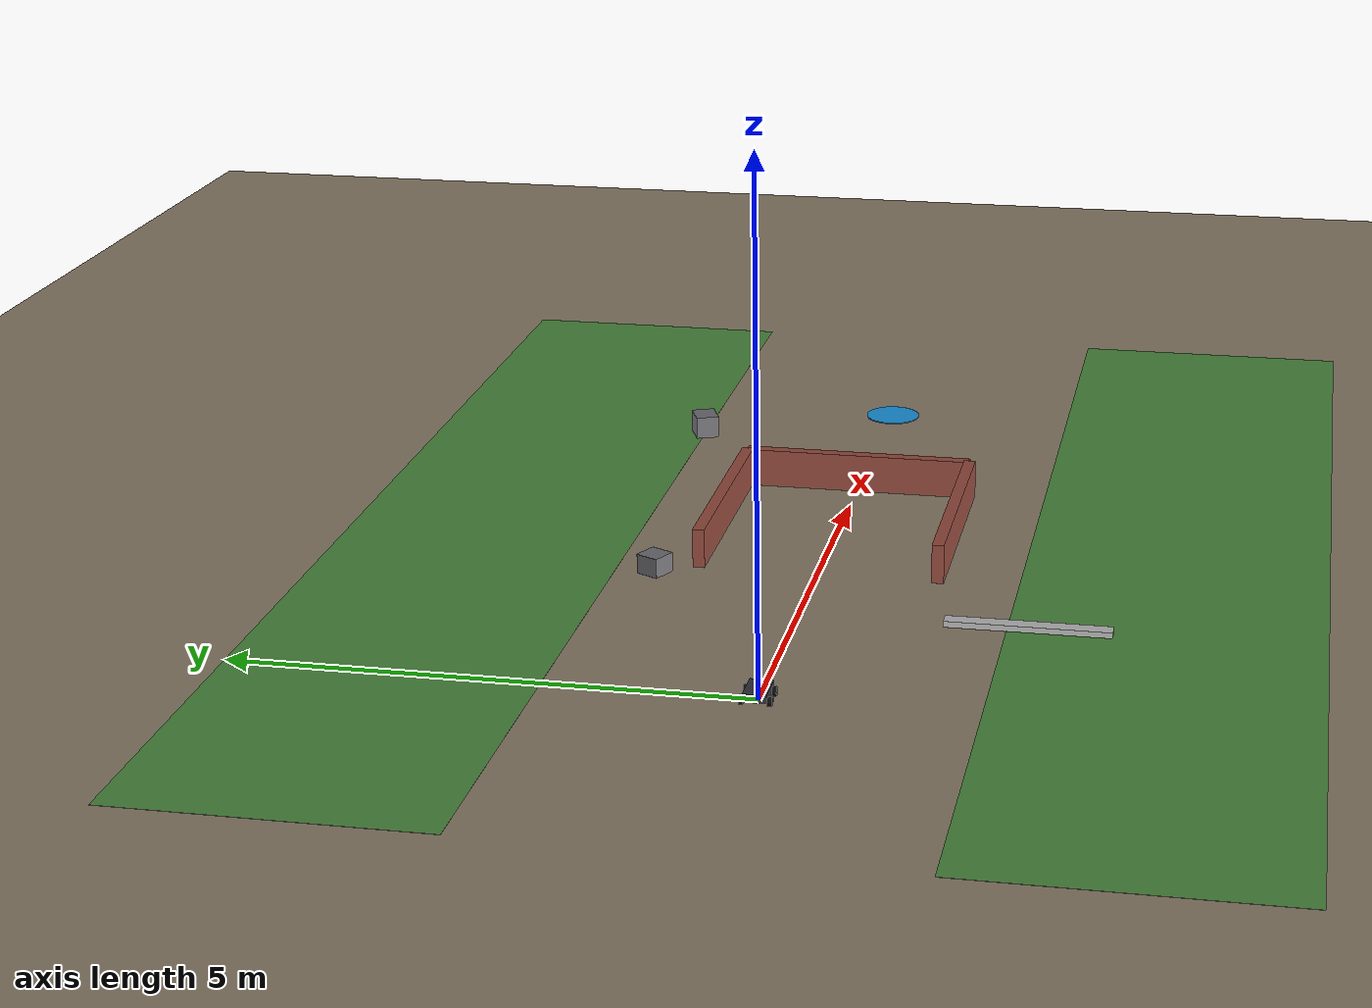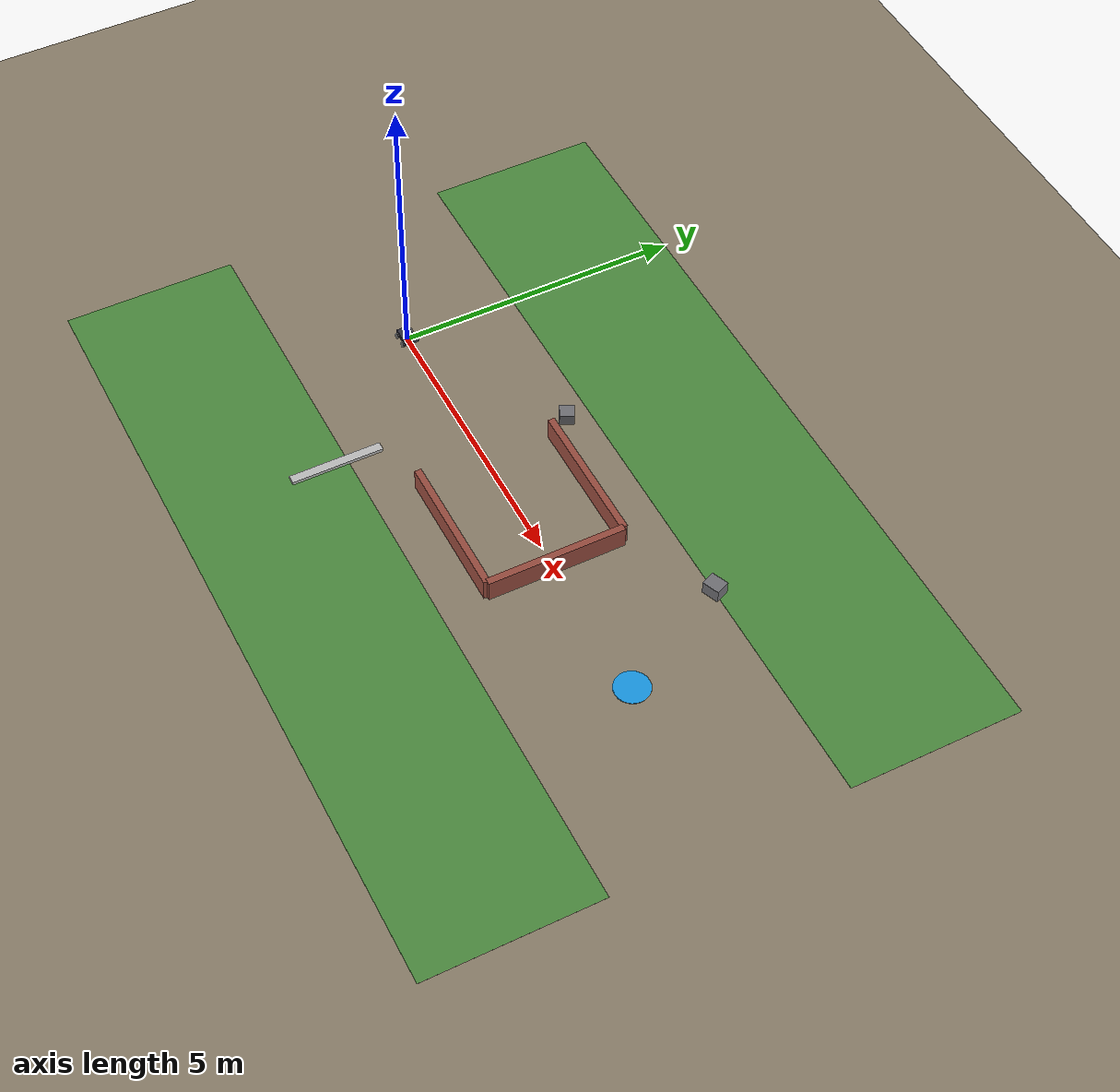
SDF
<sdf version="1.9">
 <world name="drishti_offroad">
  <physics name="1ms" type="ignored">
   <max_step_size>0.001</max_step_size>
   <real_time_factor>1.0</real_time_factor>
  </physics>
  <plugin filename="gz-sim-physics-system" name="gz::sim::systems::Physics"/>
  <plugin filename="gz-sim-user-commands-system" name="gz::sim::systems::UserCommands"/>
  <plugin filename="gz-sim-scene-broadcaster-system" name="gz::sim::systems::SceneBroadcaster"/>
  <plugin filename="gz-sim-sensors-system" name="gz::sim::systems::Sensors">
   <render_engine>ogre2</render_engine>
  </plugin>
  <plugin filename="gz-sim-imu-system" name="gz::sim::systems::Imu"/>
  <plugin filename="gz-sim-contact-system" name="gz::sim::systems::Contact"/>
  <scene>
   <ambient>0.6 0.6 0.6 1</ambient>
   <background>0.62 0.78 0.92 1</background>
   <shadows>true</shadows>
  </scene>
  <light type="directional" name="sun">
   <pose>0 0 10 0 0 0</pose>
   <diffuse>0.9 0.9 0.85 1</diffuse>
   <specular>0.2 0.2 0.2 1</specular>
   <direction>-0.5 0.2 -0.9</direction>
  </light>
  <model name="ground_plane">
   <static>true</static>
   <link name="link">
    <collision name="collision">
     <geometry><plane><normal>0 0 1</normal><size>60 60</size></plane></geometry>
     <surface><friction><ode><mu>0.9</mu><mu2>0.9</mu2></ode></friction></surface>
    </collision>
    <visual name="visual">
     <geometry><plane><normal>0 0 1</normal><size>60 60</size></plane></geometry>
     <material><ambient>0.55 0.50 0.42 1</ambient><diffuse>0.55 0.50 0.42 1</diffuse></material>
    </visual>
   </link>
  </model>
  <model name="grass_left">
   <static>true</static>
   <pose>4 3.5 0.001 0 0 0</pose>
   <link name="link">
    <visual name="v">
     <geometry><box><size>14 3 0.002</size></box></geometry>
     <material><ambient>0.30 0.55 0.25 1</ambient><diffuse>0.30 0.55 0.25 1</diffuse></material>
    </visual>
   </link>
  </model>
  <model name="grass_right">
   <static>true</static>
   <pose>4 -3.5 0.001 0 0 0</pose>
   <link name="link">
    <visual name="v">
     <geometry><box><size>14 3 0.002</size></box></geometry>
     <material><ambient>0.30 0.55 0.25 1</ambient><diffuse>0.30 0.55 0.25 1</diffuse></material>
    </visual>
   </link>
  </model>
  <model name="dead_end">
   <static>true</static>
   <link name="back">
    <pose>5.5 0 0.2 0 0 0</pose>
    <collision name="c"><geometry><box><size>0.12 2.4 0.4</size></box></geometry></collision>
    <visual name="v">
     <geometry><box><size>0.12 2.4 0.4</size></box></geometry>
     <material><ambient>0.55 0.25 0.2 1</ambient><diffuse>0.6 0.3 0.25 1</diffuse></material>
    </visual>
   </link>
   <link name="left">
    <pose>4.25 1.2 0.2 0 0 0</pose>
    <collision name="c"><geometry><box><size>2.5 0.12 0.4</size></box></geometry></collision>
    <visual name="v">
     <geometry><box><size>2.5 0.12 0.4</size></box></geometry>
     <material><ambient>0.55 0.25 0.2 1</ambient><diffuse>0.6 0.3 0.25 1</diffuse></material>
    </visual>
   </link>
   <link name="right">
    <pose>4.25 -1.2 0.2 0 0 0</pose>
    <collision name="c"><geometry><box><size>2.5 0.12 0.4</size></box></geometry></collision>
    <visual name="v">
     <geometry><box><size>2.5 0.12 0.4</size></box></geometry>
     <material><ambient>0.55 0.25 0.2 1</ambient><diffuse>0.6 0.3 0.25 1</diffuse></material>
    </visual>
   </link>
  </model>
  <model name="kerb">
   <static>true</static>
   <pose>2.0 -2.2 0.03 0 0 0</pose>
   <link name="link">
    <collision name="c"><geometry><box><size>0.15 1.6 0.06</size></box></geometry></collision>
    <visual name="v">
     <geometry><box><size>0.15 1.6 0.06</size></box></geometry>
     <material><ambient>0.7 0.7 0.7 1</ambient><diffuse>0.75 0.75 0.75 1</diffuse></material>
    </visual>
   </link>
  </model>
  <model name="rock_1">
   <static>true</static>
   <pose>7.0 2.0 0.12 0 0 0.4</pose>
   <link name="link">
    <collision name="c"><geometry><box><size>0.3 0.25 0.24</size></box></geometry></collision>
    <visual name="v">
     <geometry><box><size>0.3 0.25 0.24</size></box></geometry>
     <material><ambient>0.4 0.4 0.42 1</ambient><diffuse>0.45 0.45 0.47 1</diffuse></material>
    </visual>
   </link>
  </model>
  <model name="rock_2">
   <static>true</static>
   <pose>2.8 1.6 0.1 0 0 1.1</pose>
   <link name="link">
    <collision name="c"><geometry><box><size>0.25 0.25 0.2</size></box></geometry></collision>
    <visual name="v">
     <geometry><box><size>0.25 0.25 0.2</size></box></geometry>
     <material><ambient>0.4 0.4 0.42 1</ambient><diffuse>0.45 0.45 0.47 1</diffuse></material>
    </visual>
   </link>
  </model>
  <model name="point_b">
   <static>true</static>
   <pose>8 0 0.005 0 0 0</pose>
   <link name="link">
    <visual name="v">
     <geometry><cylinder><radius>0.3</radius><length>0.01</length></cylinder></geometry>
     <material><ambient>0.1 0.6 0.9 1</ambient><diffuse>0.1 0.6 0.9 1</diffuse></material>
    </visual>
   </link>
  </model>
  <model name="drishti_rover">
   <pose>0 0 0.045 0 0 0</pose>
   <link name="chassis">
    <pose>0 0 0.04 0 0 0</pose>
    <inertial>
     <mass>2.0</mass>
     <inertia><ixx>0.01</ixx><iyy>0.02</iyy><izz>0.025</izz><ixy>0</ixy><ixz>0</ixz><iyz>0</iyz></inertia>
    </inertial>
    <collision name="chassis_collision"><geometry><box><size>0.34 0.22 0.08</size></box></geometry></collision>
    <visual name="v">
     <geometry><box><size>0.34 0.22 0.08</size></box></geometry>
     <material><ambient>0.15 0.15 0.18 1</ambient><diffuse>0.2 0.2 0.25 1</diffuse></material>
    </visual>
    <sensor name="camera" type="camera">
     <pose>0.15 0 0.035 0 0.1047 0</pose>
     <topic>/drishti/camera</topic>
     <update_rate>30</update_rate>
     <always_on>true</always_on>
     <camera>
      <horizontal_fov>1.6057</horizontal_fov>
      <image><width>640</width><height>360</height><format>R8G8B8</format></image>
      <clip><near>0.05</near><far>40</far></clip>
     </camera>
    </sensor>
    <sensor name="imu" type="imu">
     <topic>/drishti/imu</topic>
     <update_rate>200</update_rate>
     <always_on>true</always_on>
     <imu>
      <angular_velocity>
       <z><noise type="gaussian"><mean>0</mean><stddev>0.003</stddev><bias_mean>0.005</bias_mean></noise></z>
      </angular_velocity>
      <linear_acceleration>
       <x><noise type="gaussian"><mean>0</mean><stddev>0.05</stddev></noise></x>
       <y><noise type="gaussian"><mean>0</mean><stddev>0.05</stddev></noise></y>
      </linear_acceleration>
     </imu>
    </sensor>
    <sensor name="bumper" type="contact">
     <topic>/drishti/contacts</topic>
     <update_rate>50</update_rate>
     <contact><collision>chassis_collision</collision></contact>
    </sensor>
   </link>
   <link name="left_front_wheel">
    <pose>0.11 0.13 0.0 -1.5708 0 0</pose>
    <inertial>
     <mass>0.1</mass>
     <inertia><ixx>4e-5</ixx><iyy>4e-5</iyy><izz>8e-5</izz><ixy>0</ixy><ixz>0</ixz><iyz>0</iyz></inertia>
    </inertial>
    <collision name="c">
     <geometry><cylinder><radius>0.045</radius><length>0.04</length></cylinder></geometry>
    </collision>
    <visual name="v">
     <geometry><cylinder><radius>0.045</radius><length>0.04</length></cylinder></geometry>
     <material><ambient>0.05 0.05 0.05 1</ambient></material>
    </visual>
   </link>
   <link name="left_rear_wheel">
    <pose>-0.11 0.13 0.0 -1.5708 0 0</pose>
    <inertial>
     <mass>0.1</mass>
     <inertia><ixx>4e-5</ixx><iyy>4e-5</iyy><izz>8e-5</izz><ixy>0</ixy><ixz>0</ixz><iyz>0</iyz></inertia>
    </inertial>
    <collision name="c">
     <geometry><cylinder><radius>0.045</radius><length>0.04</length></cylinder></geometry>
    </collision>
    <visual name="v">
     <geometry><cylinder><radius>0.045</radius><length>0.04</length></cylinder></geometry>
     <material><ambient>0.05 0.05 0.05 1</ambient></material>
    </visual>
   </link>
   <link name="right_front_wheel">
    <pose>0.11 -0.13 0.0 -1.5708 0 0</pose>
    <inertial>
     <mass>0.1</mass>
     <inertia><ixx>4e-5</ixx><iyy>4e-5</iyy><izz>8e-5</izz><ixy>0</ixy><ixz>0</ixz><iyz>0</iyz></inertia>
    </inertial>
    <collision name="c">
     <geometry><cylinder><radius>0.045</radius><length>0.04</length></cylinder></geometry>
    </collision>
    <visual name="v">
     <geometry><cylinder><radius>0.045</radius><length>0.04</length></cylinder></geometry>
     <material><ambient>0.05 0.05 0.05 1</ambient></material>
    </visual>
   </link>
   <link name="right_rear_wheel">
    <pose>-0.11 -0.13 0.0 -1.5708 0 0</pose>
    <inertial>
     <mass>0.1</mass>
     <inertia><ixx>4e-5</ixx><iyy>4e-5</iyy><izz>8e-5</izz><ixy>0</ixy><ixz>0</ixz><iyz>0</iyz></inertia>
    </inertial>
    <collision name="c">
     <geometry><cylinder><radius>0.045</radius><length>0.04</length></cylinder></geometry>
    </collision>
    <visual name="v">
     <geometry><cylinder><radius>0.045</radius><length>0.04</length></cylinder></geometry>
     <material><ambient>0.05 0.05 0.05 1</ambient></material>
    </visual>
   </link>
   <joint name="left_front_joint" type="revolute">
    <parent>chassis</parent>
    <child>left_front_wheel</child>
    <axis><xyz expressed_in="__model__">0 1 0</xyz><limit><lower>-1e16</lower><upper>1e16</upper></limit></axis>
   </joint>
   <joint name="left_rear_joint" type="revolute">
    <parent>chassis</parent>
    <child>left_rear_wheel</child>
    <axis><xyz expressed_in="__model__">0 1 0</xyz><limit><lower>-1e16</lower><upper>1e16</upper></limit></axis>
   </joint>
   <joint name="right_front_joint" type="revolute">
    <parent>chassis</parent>
    <child>right_front_wheel</child>
    <axis><xyz expressed_in="__model__">0 1 0</xyz><limit><lower>-1e16</lower><upper>1e16</upper></limit></axis>
   </joint>
   <joint name="right_rear_joint" type="revolute">
    <parent>chassis</parent>
    <child>right_rear_wheel</child>
    <axis><xyz expressed_in="__model__">0 1 0</xyz><limit><lower>-1e16</lower><upper>1e16</upper></limit></axis>
   </joint>
   <plugin filename="gz-sim-diff-drive-system" name="gz::sim::systems::DiffDrive">
    <left_joint>left_front_joint</left_joint>
    <left_joint>left_rear_joint</left_joint>
    <right_joint>right_front_joint</right_joint>
    <right_joint>right_rear_joint</right_joint>
    <wheel_separation>0.26</wheel_separation>
    <wheel_radius>0.045</wheel_radius>
    <max_linear_velocity>0.6</max_linear_velocity>
    <topic>/model/drishti_rover/cmd_vel</topic>
    <odom_publish_frequency>0</odom_publish_frequency>
   </plugin>
   <plugin filename="gz-sim-odometry-publisher-system" name="gz::sim::systems::OdometryPublisher">
    <odom_frame>world</odom_frame>
    <robot_base_frame>drishti_rover</robot_base_frame>
    <odom_publish_frequency>30</odom_publish_frequency>
    <dimensions>2</dimensions>
   </plugin>
  </model>
 </world>
</sdf>
